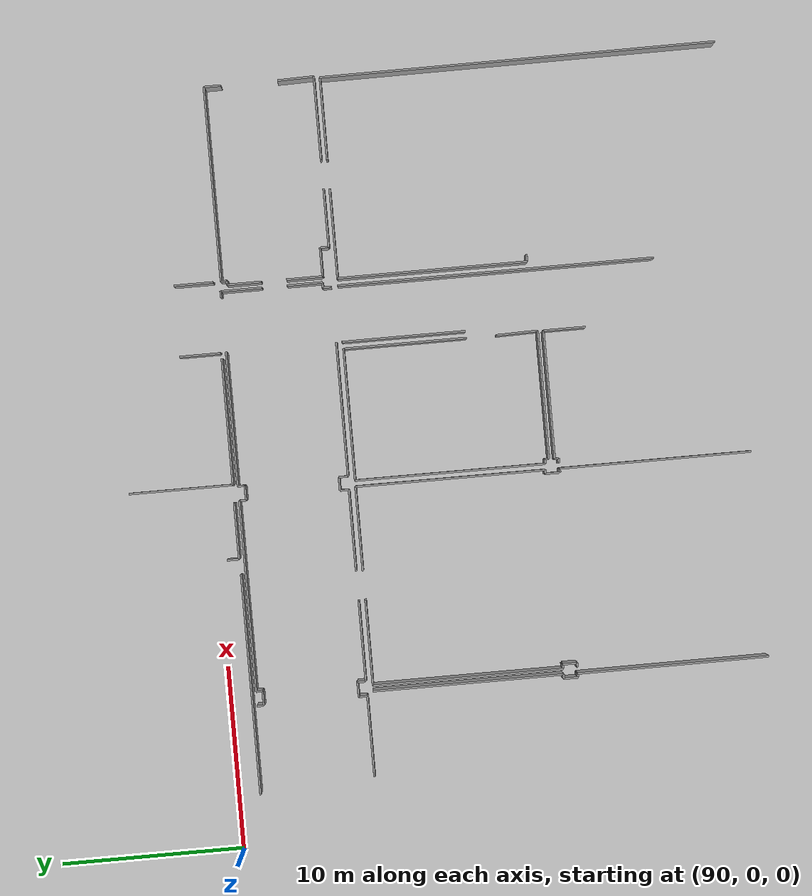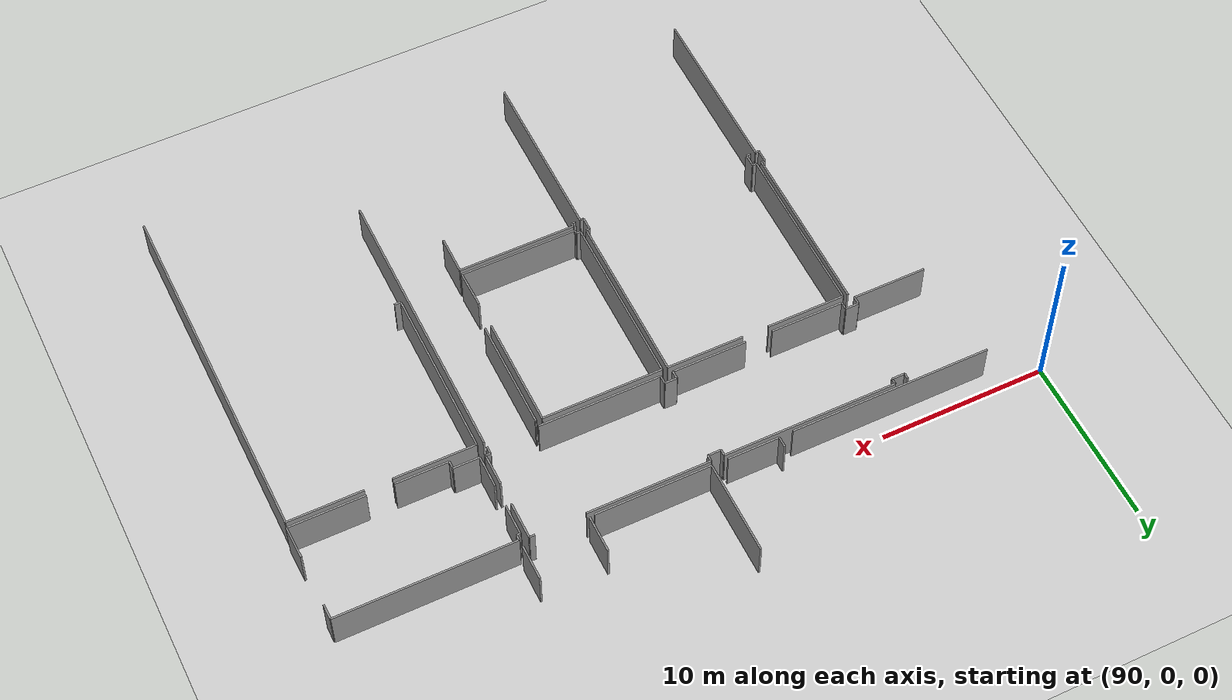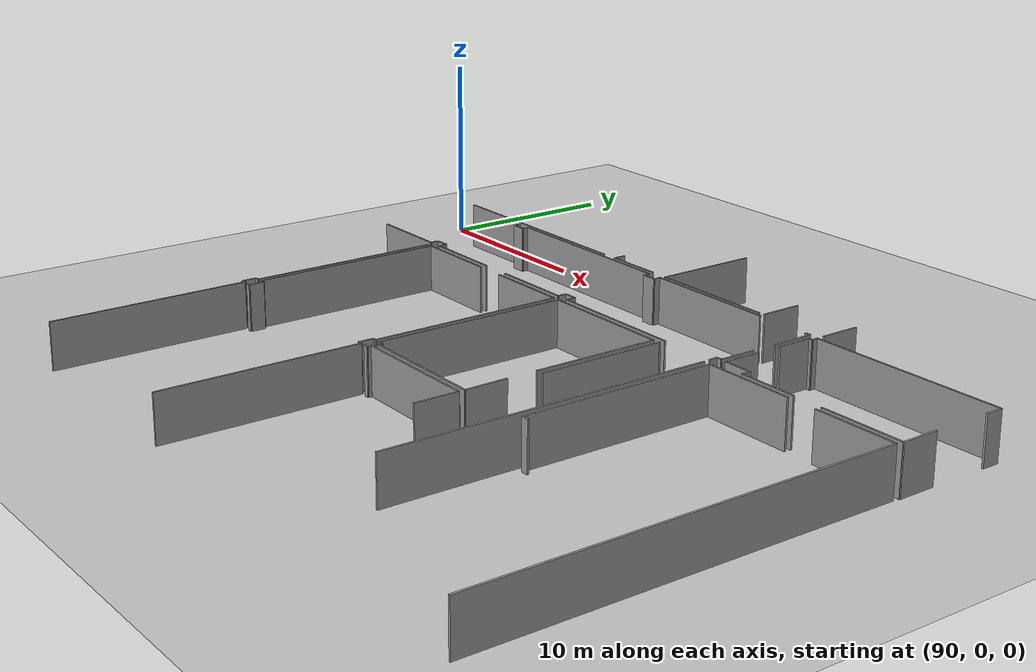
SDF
<sdf version="1.6">
 <world name="default">
  <model name="ground_plane">
   <static>1</static>
   <link name="link">
    <collision name="collision">
     <geometry><plane><normal>0 0 1</normal><size>100 100</size></plane></geometry>
     <surface><friction><ode><mu>100</mu><mu2>50</mu2></ode></friction></surface>
    </collision>
    <visual name="visual">
     <cast_shadows>0</cast_shadows>
     <geometry><plane><normal>0 0 1</normal><size>100 100</size></plane></geometry>
     <material>
      <script><uri>file://media/materials/scripts/gazebo.material</uri><name>Gazebo/Grey</name></script>
     </material>
    </visual>
   </link>
  </model>
  <model name="50015848">
   <static>1</static>
   <link name="Wall_566">
    <collision name="Wall_566_Collision">
     <geometry><box><size>0.3668910047 0.1 2.5</size></box></geometry>
     <pose>0.18344550235 0 1.25 0 0 0</pose>
    </collision>
    <visual name="Wall_566_Visual">
     <pose>0.18344550235 0 1.25 0 0 0</pose>
     <geometry><box><size>0.3668910047 0.1 2.5</size></box></geometry>
     <material>
      <script><uri>file://media/materials/scripts/gazebo.material</uri><name>Gazebo/Grey</name></script>
      <ambient>1 1 1 1</ambient>
     </material>
    </visual>
    <pose>229.67275403 -45.2369504405 0 0 0 -1.57079632679</pose>
   </link>
   <link name="Wall_567">
    <collision name="Wall_567_Collision">
     <geometry><box><size>0.784020196766 0.1 2.5</size></box></geometry>
     <pose>0.392010098383 0 1.25 0 0 0</pose>
    </collision>
    <visual name="Wall_567_Visual">
     <pose>0.392010098383 0 1.25 0 0 0</pose>
     <geometry><box><size>0.784020196766 0.1 2.5</size></box></geometry>
     <material>
      <script><uri>file://media/materials/scripts/gazebo.material</uri><name>Gazebo/Grey</name></script>
      <ambient>1 1 1 1</ambient>
     </material>
    </visual>
    <pose>229.67275403 -45.6038414452 0 0 0 0.0</pose>
   </link>
   <link name="Wall_568">
    <collision name="Wall_568_Collision">
     <geometry><box><size>0.348368844712 0.1 2.5</size></box></geometry>
     <pose>0.174184422356 0 1.25 0 0 0</pose>
    </collision>
    <visual name="Wall_568_Visual">
     <pose>0.174184422356 0 1.25 0 0 0</pose>
     <geometry><box><size>0.348368844712 0.1 2.5</size></box></geometry>
     <material>
      <script><uri>file://media/materials/scripts/gazebo.material</uri><name>Gazebo/Grey</name></script>
      <ambient>1 1 1 1</ambient>
     </material>
    </visual>
    <pose>230.456774226 -45.6038414452 0 0 0 1.57079632679</pose>
   </link>
   <link name="Wall_569">
    <collision name="Wall_569_Collision">
     <geometry><box><size>10.4104688263 0.1 2.5</size></box></geometry>
     <pose>5.20523441316 0 1.25 0 0 0</pose>
    </collision>
    <visual name="Wall_569_Visual">
     <pose>5.20523441316 0 1.25 0 0 0</pose>
     <geometry><box><size>10.4104688263 0.1 2.5</size></box></geometry>
     <material>
      <script><uri>file://media/materials/scripts/gazebo.material</uri><name>Gazebo/Grey</name></script>
      <ambient>1 1 1 1</ambient>
     </material>
    </visual>
    <pose>230.456774226 -45.2554726005 0 0 0 0.0</pose>
   </link>
   <link name="Wall_570">
    <collision name="Wall_570_Collision">
     <geometry><box><size>0.367905917576 0.1 2.5</size></box></geometry>
     <pose>0.183952958788 0 1.25 0 0 0</pose>
    </collision>
    <visual name="Wall_570_Visual">
     <pose>0.183952958788 0 1.25 0 0 0</pose>
     <geometry><box><size>0.367905917576 0.1 2.5</size></box></geometry>
     <material>
      <script><uri>file://media/materials/scripts/gazebo.material</uri><name>Gazebo/Grey</name></script>
      <ambient>1 1 1 1</ambient>
     </material>
    </visual>
    <pose>240.867243053 -45.2554726005 0 0 0 -1.57079632679</pose>
   </link>
   <link name="Wall_571">
    <collision name="Wall_571_Collision">
     <geometry><box><size>0.794169325527 0.1 2.5</size></box></geometry>
     <pose>0.397084662763 0 1.25 0 0 0</pose>
    </collision>
    <visual name="Wall_571_Visual">
     <pose>0.397084662763 0 1.25 0 0 0</pose>
     <geometry><box><size>0.794169325527 0.1 2.5</size></box></geometry>
     <material>
      <script><uri>file://media/materials/scripts/gazebo.material</uri><name>Gazebo/Grey</name></script>
      <ambient>1 1 1 1</ambient>
     </material>
    </visual>
    <pose>240.867243053 -45.6233785181 0 0 0 0.0</pose>
   </link>
   <link name="Wall_572">
    <collision name="Wall_572_Collision">
     <geometry><box><size>0.378562502775 0.1 2.5</size></box></geometry>
     <pose>0.189281251388 0 1.25 0 0 0</pose>
    </collision>
    <visual name="Wall_572_Visual">
     <pose>0.189281251388 0 1.25 0 0 0</pose>
     <geometry><box><size>0.378562502775 0.1 2.5</size></box></geometry>
     <material>
      <script><uri>file://media/materials/scripts/gazebo.material</uri><name>Gazebo/Grey</name></script>
      <ambient>1 1 1 1</ambient>
     </material>
    </visual>
    <pose>241.661412378 -45.6233785181 0 0 0 1.57079632679</pose>
   </link>
   <link name="Wall_573">
    <collision name="Wall_573_Collision">
     <geometry><box><size>7.3403573762 0.1 2.5</size></box></geometry>
     <pose>3.6701786881 0 1.25 0 0 0</pose>
    </collision>
    <visual name="Wall_573_Visual">
     <pose>3.6701786881 0 1.25 0 0 0</pose>
     <geometry><box><size>7.3403573762 0.1 2.5</size></box></geometry>
     <material>
      <script><uri>file://media/materials/scripts/gazebo.material</uri><name>Gazebo/Grey</name></script>
      <ambient>1 1 1 1</ambient>
     </material>
    </visual>
    <pose>241.661412378 -45.2448160153 0 0 0 0.0</pose>
   </link>
   <link name="Wall_574">
    <collision name="Wall_574_Collision">
     <geometry><box><size>0.319697555963 0.1 2.5</size></box></geometry>
     <pose>0.159848777981 0 1.25 0 0 0</pose>
    </collision>
    <visual name="Wall_574_Visual">
     <pose>0.159848777981 0 1.25 0 0 0</pose>
     <geometry><box><size>0.319697555963 0.1 2.5</size></box></geometry>
     <material>
      <script><uri>file://media/materials/scripts/gazebo.material</uri><name>Gazebo/Grey</name></script>
      <ambient>1 1 1 1</ambient>
     </material>
    </visual>
    <pose>251.98561361 -45.2448160153 0 0 0 0.0</pose>
   </link>
   <link name="Wall_575">
    <collision name="Wall_575_Collision">
     <geometry><box><size>2.25919606214 0.1 2.5</size></box></geometry>
     <pose>1.12959803107 0 1.25 0 0 0</pose>
    </collision>
    <visual name="Wall_575_Visual">
     <pose>1.12959803107 0 1.25 0 0 0</pose>
     <geometry><box><size>2.25919606214 0.1 2.5</size></box></geometry>
     <material>
      <script><uri>file://media/materials/scripts/gazebo.material</uri><name>Gazebo/Grey</name></script>
      <ambient>1 1 1 1</ambient>
     </material>
    </visual>
    <pose>252.305311166 -45.2448160153 0 0 0 -1.57079632679</pose>
   </link>
   <link name="Wall_576">
    <collision name="Wall_576_Collision">
     <geometry><box><size>1.93772240864 0.1 2.5</size></box></geometry>
     <pose>0.968861204321 0 1.25 0 0 0</pose>
    </collision>
    <visual name="Wall_576_Visual">
     <pose>0.968861204321 0 1.25 0 0 0</pose>
     <geometry><box><size>1.93772240864 0.1 2.5</size></box></geometry>
     <material>
      <script><uri>file://media/materials/scripts/gazebo.material</uri><name>Gazebo/Grey</name></script>
      <ambient>1 1 1 1</ambient>
     </material>
    </visual>
    <pose>252.305311166 -48.8629804185 0 0 0 -1.57079632679</pose>
   </link>
   <link name="Wall_577">
    <collision name="Wall_577_Collision">
     <geometry><box><size>0.286712887491 0.1 2.5</size></box></geometry>
     <pose>0.143356443745 0 1.25 0 0 0</pose>
    </collision>
    <visual name="Wall_577_Visual">
     <pose>0.143356443745 0 1.25 0 0 0</pose>
     <geometry><box><size>0.286712887491 0.1 2.5</size></box></geometry>
     <material>
      <script><uri>file://media/materials/scripts/gazebo.material</uri><name>Gazebo/Grey</name></script>
      <ambient>1 1 1 1</ambient>
     </material>
    </visual>
    <pose>252.305311166 -50.8007028272 0 0 0 3.14159265359</pose>
   </link>
   <link name="Wall_578">
    <collision name="Wall_578_Collision">
     <geometry><box><size>0.460516717518 0.1 2.5</size></box></geometry>
     <pose>0.230258358759 0 1.25 0 0 0</pose>
    </collision>
    <visual name="Wall_578_Visual">
     <pose>0.230258358759 0 1.25 0 0 0</pose>
     <geometry><box><size>0.460516717518 0.1 2.5</size></box></geometry>
     <material>
      <script><uri>file://media/materials/scripts/gazebo.material</uri><name>Gazebo/Grey</name></script>
      <ambient>1 1 1 1</ambient>
     </material>
    </visual>
    <pose>252.018598278 -50.8007028272 0 0 0 -1.57079632679</pose>
   </link>
   <link name="Wall_579">
    <collision name="Wall_579_Collision">
     <geometry><box><size>7.32767096525 0.1 2.5</size></box></geometry>
     <pose>3.66383548262 0 1.25 0 0 0</pose>
    </collision>
    <visual name="Wall_579_Visual">
     <pose>3.66383548262 0 1.25 0 0 0</pose>
     <geometry><box><size>7.32767096525 0.1 2.5</size></box></geometry>
     <material>
      <script><uri>file://media/materials/scripts/gazebo.material</uri><name>Gazebo/Grey</name></script>
      <ambient>1 1 1 1</ambient>
     </material>
    </visual>
    <pose>249.004307037 -51.2612195447 0 0 0 3.14159265359</pose>
   </link>
   <link name="Wall_580">
    <collision name="Wall_580_Collision">
     <geometry><box><size>0.49882967859 0.1 2.5</size></box></geometry>
     <pose>0.249414839295 0 1.25 0 0 0</pose>
    </collision>
    <visual name="Wall_580_Visual">
     <pose>0.249414839295 0 1.25 0 0 0</pose>
     <geometry><box><size>0.49882967859 0.1 2.5</size></box></geometry>
     <material>
      <script><uri>file://media/materials/scripts/gazebo.material</uri><name>Gazebo/Grey</name></script>
      <ambient>1 1 1 1</ambient>
     </material>
    </visual>
    <pose>241.676636071 -51.2612195447 0 0 0 1.57079632679</pose>
   </link>
   <link name="Wall_581">
    <collision name="Wall_581_Collision">
     <geometry><box><size>0.728199988582 0.1 2.5</size></box></geometry>
     <pose>0.364099994291 0 1.25 0 0 0</pose>
    </collision>
    <visual name="Wall_581_Visual">
     <pose>0.364099994291 0 1.25 0 0 0</pose>
     <geometry><box><size>0.728199988582 0.1 2.5</size></box></geometry>
     <material>
      <script><uri>file://media/materials/scripts/gazebo.material</uri><name>Gazebo/Grey</name></script>
      <ambient>1 1 1 1</ambient>
     </material>
    </visual>
    <pose>241.676636071 -50.7623898661 0 0 0 3.14159265359</pose>
   </link>
   <link name="Wall_582">
    <collision name="Wall_582_Collision">
     <geometry><box><size>0.479800062163 0.1 2.5</size></box></geometry>
     <pose>0.239900031082 0 1.25 0 0 0</pose>
    </collision>
    <visual name="Wall_582_Visual">
     <pose>0.239900031082 0 1.25 0 0 0</pose>
     <geometry><box><size>0.479800062163 0.1 2.5</size></box></geometry>
     <material>
      <script><uri>file://media/materials/scripts/gazebo.material</uri><name>Gazebo/Grey</name></script>
      <ambient>1 1 1 1</ambient>
     </material>
    </visual>
    <pose>240.948436083 -50.7623898661 0 0 0 -1.57079632679</pose>
   </link>
   <link name="Wall_583">
    <collision name="Wall_583_Collision">
     <geometry><box><size>4.45800480815 0.1 2.5</size></box></geometry>
     <pose>2.22900240407 0 1.25 0 0 0</pose>
    </collision>
    <visual name="Wall_583_Visual">
     <pose>2.22900240407 0 1.25 0 0 0</pose>
     <geometry><box><size>4.45800480815 0.1 2.5</size></box></geometry>
     <material>
      <script><uri>file://media/materials/scripts/gazebo.material</uri><name>Gazebo/Grey</name></script>
      <ambient>1 1 1 1</ambient>
     </material>
    </visual>
    <pose>240.948436083 -51.2421899283 0 0 0 3.14159265359</pose>
   </link>
   <link name="Wall_584">
    <collision name="Wall_584_Collision">
     <geometry><box><size>4.36919993149 0.1 2.5</size></box></geometry>
     <pose>2.18459996575 0 1.25 0 0 0</pose>
    </collision>
    <visual name="Wall_584_Visual">
     <pose>2.18459996575 0 1.25 0 0 0</pose>
     <geometry><box><size>4.36919993149 0.1 2.5</size></box></geometry>
     <material>
      <script><uri>file://media/materials/scripts/gazebo.material</uri><name>Gazebo/Grey</name></script>
      <ambient>1 1 1 1</ambient>
     </material>
    </visual>
    <pose>234.856421544 -51.2421899283 0 0 0 3.14159265359</pose>
   </link>
   <link name="Wall_585">
    <collision name="Wall_585_Collision">
     <geometry><box><size>0.45214368629 0.1 2.5</size></box></geometry>
     <pose>0.226071843145 0 1.25 0 0 0</pose>
    </collision>
    <visual name="Wall_585_Visual">
     <pose>0.226071843145 0 1.25 0 0 0</pose>
     <geometry><box><size>0.45214368629 0.1 2.5</size></box></geometry>
     <material>
      <script><uri>file://media/materials/scripts/gazebo.material</uri><name>Gazebo/Grey</name></script>
      <ambient>1 1 1 1</ambient>
     </material>
    </visual>
    <pose>230.487221613 -51.2421899283 0 0 0 1.57079632679</pose>
   </link>
   <link name="Wall_586">
    <collision name="Wall_586_Collision">
     <geometry><box><size>0.801781172097 0.1 2.5</size></box></geometry>
     <pose>0.400890586049 0 1.25 0 0 0</pose>
    </collision>
    <visual name="Wall_586_Visual">
     <pose>0.400890586049 0 1.25 0 0 0</pose>
     <geometry><box><size>0.801781172097 0.1 2.5</size></box></geometry>
     <material>
      <script><uri>file://media/materials/scripts/gazebo.material</uri><name>Gazebo/Grey</name></script>
      <ambient>1 1 1 1</ambient>
     </material>
    </visual>
    <pose>230.487221613 -50.790046242 0 0 0 3.14159265359</pose>
   </link>
   <link name="Wall_587">
    <collision name="Wall_587_Collision">
     <geometry><box><size>0.467113651213 0.1 2.5</size></box></geometry>
     <pose>0.233556825606 0 1.25 0 0 0</pose>
    </collision>
    <visual name="Wall_587_Visual">
     <pose>0.233556825606 0 1.25 0 0 0</pose>
     <geometry><box><size>0.467113651213 0.1 2.5</size></box></geometry>
     <material>
      <script><uri>file://media/materials/scripts/gazebo.material</uri><name>Gazebo/Grey</name></script>
      <ambient>1 1 1 1</ambient>
     </material>
    </visual>
    <pose>229.68544044 -50.790046242 0 0 0 -1.57079632679</pose>
   </link>
   <link name="Wall_588">
    <collision name="Wall_588_Collision">
     <geometry><box><size>4.40472188216 0.1 2.5</size></box></geometry>
     <pose>2.20236094108 0 1.25 0 0 0</pose>
    </collision>
    <visual name="Wall_588_Visual">
     <pose>2.20236094108 0 1.25 0 0 0</pose>
     <geometry><box><size>4.40472188216 0.1 2.5</size></box></geometry>
     <material>
      <script><uri>file://media/materials/scripts/gazebo.material</uri><name>Gazebo/Grey</name></script>
      <ambient>1 1 1 1</ambient>
     </material>
    </visual>
    <pose>229.68544044 -51.2571598932 0 0 0 3.14159265359</pose>
   </link>
   <link name="Wall_953">
    <collision name="Wall_953_Collision">
     <geometry><box><size>3.08533514326 0.1 2.5</size></box></geometry>
     <pose>1.54266757163 0 1.25 0 0 0</pose>
    </collision>
    <visual name="Wall_953_Visual">
     <pose>1.54266757163 0 1.25 0 0 0</pose>
     <geometry><box><size>3.08533514326 0.1 2.5</size></box></geometry>
     <material>
      <script><uri>file://media/materials/scripts/gazebo.material</uri><name>Gazebo/Grey</name></script>
      <ambient>1 1 1 1</ambient>
     </material>
    </visual>
    <pose>240.796199151 -44.9674910719 0 0 0 3.14159265359</pose>
   </link>
   <link name="Wall_954">
    <collision name="Wall_954_Collision">
     <geometry><box><size>0.650559153563 0.1 2.5</size></box></geometry>
     <pose>0.325279576781 0 1.25 0 0 0</pose>
    </collision>
    <visual name="Wall_954_Visual">
     <pose>0.325279576781 0 1.25 0 0 0</pose>
     <geometry><box><size>0.650559153563 0.1 2.5</size></box></geometry>
     <material>
      <script><uri>file://media/materials/scripts/gazebo.material</uri><name>Gazebo/Grey</name></script>
      <ambient>1 1 1 1</ambient>
     </material>
    </visual>
    <pose>237.710864008 -44.9674910719 0 0 0 1.57079632679</pose>
   </link>
   <link name="Wall_957">
    <collision name="Wall_957_Collision">
     <geometry><box><size>12.0267175815 0.1 2.5</size></box></geometry>
     <pose>6.01335879073 0 1.25 0 0 0</pose>
    </collision>
    <visual name="Wall_957_Visual">
     <pose>6.01335879073 0 1.25 0 0 0</pose>
     <geometry><box><size>12.0267175815 0.1 2.5</size></box></geometry>
     <material>
      <script><uri>file://media/materials/scripts/gazebo.material</uri><name>Gazebo/Grey</name></script>
      <ambient>1 1 1 1</ambient>
     </material>
    </visual>
    <pose>236.876098167 -45.0009831968 0 0 0 3.14159265359</pose>
   </link>
   <link name="Wall_1065">
    <collision name="Wall_1065_Collision">
     <geometry><box><size>4.52397414509 0.1 2.5</size></box></geometry>
     <pose>2.26198707255 0 1.25 0 0 0</pose>
    </collision>
    <visual name="Wall_1065_Visual">
     <pose>2.26198707255 0 1.25 0 0 0</pose>
     <geometry><box><size>4.52397414509 0.1 2.5</size></box></geometry>
     <material>
      <script><uri>file://media/materials/scripts/gazebo.material</uri><name>Gazebo/Grey</name></script>
      <ambient>1 1 1 1</ambient>
     </material>
    </visual>
    <pose>263.487113778 -51.3122189167 0 0 0 3.14159265359</pose>
   </link>
   <link name="Wall_1066">
    <collision name="Wall_1066_Collision">
     <geometry><box><size>3.17667730211 0.1 2.5</size></box></geometry>
     <pose>1.58833865105 0 1.25 0 0 0</pose>
    </collision>
    <visual name="Wall_1066_Visual">
     <pose>1.58833865105 0 1.25 0 0 0</pose>
     <geometry><box><size>3.17667730211 0.1 2.5</size></box></geometry>
     <material>
      <script><uri>file://media/materials/scripts/gazebo.material</uri><name>Gazebo/Grey</name></script>
      <ambient>1 1 1 1</ambient>
     </material>
    </visual>
    <pose>257.369726418 -51.3122189167 0 0 0 3.14159265359</pose>
   </link>
   <link name="Wall_1067">
    <collision name="Wall_1067_Collision">
     <geometry><box><size>0.472188215593 0.1 2.5</size></box></geometry>
     <pose>0.236094107796 0 1.25 0 0 0</pose>
    </collision>
    <visual name="Wall_1067_Visual">
     <pose>0.236094107796 0 1.25 0 0 0</pose>
     <geometry><box><size>0.472188215593 0.1 2.5</size></box></geometry>
     <material>
      <script><uri>file://media/materials/scripts/gazebo.material</uri><name>Gazebo/Grey</name></script>
      <ambient>1 1 1 1</ambient>
     </material>
    </visual>
    <pose>254.193049115 -51.3122189167 0 0 0 1.57079632679</pose>
   </link>
   <link name="Wall_1068">
    <collision name="Wall_1068_Collision">
     <geometry><box><size>1.56804039353 0.1 2.5</size></box></geometry>
     <pose>0.784020196766 0 1.25 0 0 0</pose>
    </collision>
    <visual name="Wall_1068_Visual">
     <pose>0.784020196766 0 1.25 0 0 0</pose>
     <geometry><box><size>1.56804039353 0.1 2.5</size></box></geometry>
     <material>
      <script><uri>file://media/materials/scripts/gazebo.material</uri><name>Gazebo/Grey</name></script>
      <ambient>1 1 1 1</ambient>
     </material>
    </visual>
    <pose>254.193049115 -50.8400307011 0 0 0 3.14159265359</pose>
   </link>
   <link name="Wall_1069">
    <collision name="Wall_1069_Collision">
     <geometry><box><size>1.96867725136 0.1 2.5</size></box></geometry>
     <pose>0.984338625681 0 1.25 0 0 0</pose>
    </collision>
    <visual name="Wall_1069_Visual">
     <pose>0.984338625681 0 1.25 0 0 0</pose>
     <geometry><box><size>1.96867725136 0.1 2.5</size></box></geometry>
     <material>
      <script><uri>file://media/materials/scripts/gazebo.material</uri><name>Gazebo/Grey</name></script>
      <ambient>1 1 1 1</ambient>
     </material>
    </visual>
    <pose>252.625008722 -50.8400307011 0 0 0 1.57079632679</pose>
   </link>
   <link name="Wall_1070">
    <collision name="Wall_1070_Collision">
     <geometry><box><size>1.87124561526 0.1 2.5</size></box></geometry>
     <pose>0.93562280763 0 1.25 0 0 0</pose>
    </collision>
    <visual name="Wall_1070_Visual">
     <pose>0.93562280763 0 1.25 0 0 0</pose>
     <geometry><box><size>1.87124561526 0.1 2.5</size></box></geometry>
     <material>
      <script><uri>file://media/materials/scripts/gazebo.material</uri><name>Gazebo/Grey</name></script>
      <ambient>1 1 1 1</ambient>
     </material>
    </visual>
    <pose>252.625008722 -47.5040120775 0 0 0 1.57079632679</pose>
   </link>
   <link name="Wall_1071">
    <collision name="Wall_1071_Collision">
     <geometry><box><size>0.215668986165 0.1 2.5</size></box></geometry>
     <pose>0.107834493083 0 1.25 0 0 0</pose>
    </collision>
    <visual name="Wall_1071_Visual">
     <pose>0.107834493083 0 1.25 0 0 0</pose>
     <geometry><box><size>0.215668986165 0.1 2.5</size></box></geometry>
     <material>
      <script><uri>file://media/materials/scripts/gazebo.material</uri><name>Gazebo/Grey</name></script>
      <ambient>1 1 1 1</ambient>
     </material>
    </visual>
    <pose>252.625008722 -45.6327664622 0 0 0 0.0</pose>
   </link>
   <link name="Wall_1072">
    <collision name="Wall_1072_Collision">
     <geometry><box><size>0.319190099525 0.1 2.5</size></box></geometry>
     <pose>0.159595049762 0 1.25 0 0 0</pose>
    </collision>
    <visual name="Wall_1072_Visual">
     <pose>0.159595049762 0 1.25 0 0 0</pose>
     <geometry><box><size>0.319190099525 0.1 2.5</size></box></geometry>
     <material>
      <script><uri>file://media/materials/scripts/gazebo.material</uri><name>Gazebo/Grey</name></script>
      <ambient>1 1 1 1</ambient>
     </material>
    </visual>
    <pose>252.840677708 -45.6327664622 0 0 0 1.57079632679</pose>
   </link>
   <link name="Wall_1073">
    <collision name="Wall_1073_Collision">
     <geometry><box><size>10.605839555 0.1 2.5</size></box></geometry>
     <pose>5.30291977748 0 1.25 0 0 0</pose>
    </collision>
    <visual name="Wall_1073_Visual">
     <pose>5.30291977748 0 1.25 0 0 0</pose>
     <geometry><box><size>10.605839555 0.1 2.5</size></box></geometry>
     <material>
      <script><uri>file://media/materials/scripts/gazebo.material</uri><name>Gazebo/Grey</name></script>
      <ambient>1 1 1 1</ambient>
     </material>
    </visual>
    <pose>252.840677708 -45.3135763627 0 0 0 0.0</pose>
   </link>
   <link name="Wall_1074">
    <collision name="Wall_1074_Collision">
     <geometry><box><size>0.92001852216 0.1 2.5</size></box></geometry>
     <pose>0.46000926108 0 1.25 0 0 0</pose>
    </collision>
    <visual name="Wall_1074_Visual">
     <pose>0.46000926108 0 1.25 0 0 0</pose>
     <geometry><box><size>0.92001852216 0.1 2.5</size></box></geometry>
     <material>
      <script><uri>file://media/materials/scripts/gazebo.material</uri><name>Gazebo/Grey</name></script>
      <ambient>1 1 1 1</ambient>
     </material>
    </visual>
    <pose>263.446517263 -45.3135763627 0 0 0 -1.57079632679</pose>
   </link>
   <link name="Wall_1075">
    <collision name="Wall_1075_Collision">
     <geometry><box><size>1.9855846395 0.1 2.5</size></box></geometry>
     <pose>0.99279231975 0 1.25 0 0 0</pose>
    </collision>
    <visual name="Wall_1075_Visual">
     <pose>0.99279231975 0 1.25 0 0 0</pose>
     <geometry><box><size>1.9855846395 0.1 2.5</size></box></geometry>
     <material>
      <script><uri>file://media/materials/scripts/gazebo.material</uri><name>Gazebo/Grey</name></script>
      <ambient>1 1 1 1</ambient>
     </material>
    </visual>
    <pose>263.446517263 -49.3270493311 0 0 0 -1.55034927903</pose>
   </link>
   <link name="Wall_1076">
    <collision name="Wall_1076_Collision">
     <geometry><box><size>2.24346491256 0.1 2.5</size></box></geometry>
     <pose>1.12173245628 0 1.25 0 0 0</pose>
    </collision>
    <visual name="Wall_1076_Visual">
     <pose>1.12173245628 0 1.25 0 0 0</pose>
     <geometry><box><size>2.24346491256 0.1 2.5</size></box></geometry>
     <material>
      <script><uri>file://media/materials/scripts/gazebo.material</uri><name>Gazebo/Grey</name></script>
      <ambient>1 1 1 1</ambient>
     </material>
    </visual>
    <pose>248.948486828 -44.94211825 0 0 0 1.57079632679</pose>
   </link>
   <link name="Wall_1124">
    <collision name="Wall_1124_Collision">
     <geometry><box><size>6.89633299291 0.1 2.5</size></box></geometry>
     <pose>3.44816649646 0 1.25 0 0 0</pose>
    </collision>
    <visual name="Wall_1124_Visual">
     <pose>3.44816649646 0 1.25 0 0 0</pose>
     <geometry><box><size>6.89633299291 0.1 2.5</size></box></geometry>
     <material>
      <script><uri>file://media/materials/scripts/gazebo.material</uri><name>Gazebo/Grey</name></script>
      <ambient>1 1 1 1</ambient>
     </material>
    </visual>
    <pose>248.659236659 -44.9875356012 0 0 0 3.14159265359</pose>
   </link>
   <link name="Wall_1125">
    <collision name="Wall_1125_Collision">
     <geometry><box><size>5.67158687971 0.1 2.5</size></box></geometry>
     <pose>2.83579343986 0 1.25 0 0 0</pose>
    </collision>
    <visual name="Wall_1125_Visual">
     <pose>2.83579343986 0 1.25 0 0 0</pose>
     <geometry><box><size>5.67158687971 0.1 2.5</size></box></geometry>
     <material>
      <script><uri>file://media/materials/scripts/gazebo.material</uri><name>Gazebo/Grey</name></script>
      <ambient>1 1 1 1</ambient>
     </material>
    </visual>
    <pose>241.762903666 -44.9875356012 0 0 0 1.57079632679</pose>
   </link>
   <link name="Wall_1201">
    <collision name="Wall_1201_Collision">
     <geometry><box><size>2.14577954824 0.1 2.5</size></box></geometry>
     <pose>1.07288977412 0 1.25 0 0 0</pose>
    </collision>
    <visual name="Wall_1201_Visual">
     <pose>1.07288977412 0 1.25 0 0 0</pose>
     <geometry><box><size>2.14577954824 0.1 2.5</size></box></geometry>
     <material>
      <script><uri>file://media/materials/scripts/gazebo.material</uri><name>Gazebo/Grey</name></script>
      <ambient>1 1 1 1</ambient>
     </material>
    </visual>
    <pose>252.825454015 -44.8916263345 0 0 0 1.57079632679</pose>
   </link>
   <link name="Wall_1216">
    <collision name="Wall_1216_Collision">
     <geometry><box><size>0.390741457288 0.1 2.5</size></box></geometry>
     <pose>0.195370728644 0 1.25 0 0 0</pose>
    </collision>
    <visual name="Wall_1216_Visual">
     <pose>0.195370728644 0 1.25 0 0 0</pose>
     <geometry><box><size>0.390741457288 0.1 2.5</size></box></geometry>
     <material>
      <script><uri>file://media/materials/scripts/gazebo.material</uri><name>Gazebo/Grey</name></script>
      <ambient>1 1 1 1</ambient>
     </material>
    </visual>
    <pose>252.840677708 -61.9819979829 0 0 0 3.14159265359</pose>
   </link>
   <link name="Wall_1217">
    <collision name="Wall_1217_Collision">
     <geometry><box><size>10.3409472943 0.1 2.5</size></box></geometry>
     <pose>5.17047364715 0 1.25 0 0 0</pose>
    </collision>
    <visual name="Wall_1217_Visual">
     <pose>5.17047364715 0 1.25 0 0 0</pose>
     <geometry><box><size>10.3409472943 0.1 2.5</size></box></geometry>
     <material>
      <script><uri>file://media/materials/scripts/gazebo.material</uri><name>Gazebo/Grey</name></script>
      <ambient>1 1 1 1</ambient>
     </material>
    </visual>
    <pose>252.449936251 -61.9819979829 0 0 0 1.57079632679</pose>
   </link>
   <link name="Wall_1218">
    <collision name="Wall_1218_Collision">
     <geometry><box><size>4.88680549829 0.1 2.5</size></box></geometry>
     <pose>2.44340274915 0 1.25 0 0 0</pose>
    </collision>
    <visual name="Wall_1218_Visual">
     <pose>2.44340274915 0 1.25 0 0 0</pose>
     <geometry><box><size>4.88680549829 0.1 2.5</size></box></geometry>
     <material>
      <script><uri>file://media/materials/scripts/gazebo.material</uri><name>Gazebo/Grey</name></script>
      <ambient>1 1 1 1</ambient>
     </material>
    </visual>
    <pose>252.449936251 -51.6410506886 0 0 0 0.0</pose>
   </link>
   <link name="Wall_1219">
    <collision name="Wall_1219_Collision">
     <geometry><box><size>4.46561665472 0.1 2.5</size></box></geometry>
     <pose>2.23280832736 0 1.25 0 0 0</pose>
    </collision>
    <visual name="Wall_1219_Visual">
     <pose>2.23280832736 0 1.25 0 0 0</pose>
     <geometry><box><size>4.46561665472 0.1 2.5</size></box></geometry>
     <material>
      <script><uri>file://media/materials/scripts/gazebo.material</uri><name>Gazebo/Grey</name></script>
      <ambient>1 1 1 1</ambient>
     </material>
    </visual>
    <pose>258.942841375 -51.6410506886 0 0 0 0.0</pose>
   </link>
   <link name="Wall_1220">
    <collision name="Wall_1220_Collision">
     <geometry><box><size>21.5578366691 0.1 2.5</size></box></geometry>
     <pose>10.7789183345 0 1.25 0 0 0</pose>
    </collision>
    <visual name="Wall_1220_Visual">
     <pose>10.7789183345 0 1.25 0 0 0</pose>
     <geometry><box><size>21.5578366691 0.1 2.5</size></box></geometry>
     <material>
      <script><uri>file://media/materials/scripts/gazebo.material</uri><name>Gazebo/Grey</name></script>
      <ambient>1 1 1 1</ambient>
     </material>
    </visual>
    <pose>263.40845803 -51.6410506886 0 0 0 -1.56820700063</pose>
   </link>
   <link name="Wall_1225">
    <collision name="Wall_1225_Collision">
     <geometry><box><size>6.72379780398 0.1 2.5</size></box></geometry>
     <pose>3.36189890199 0 1.25 0 0 0</pose>
    </collision>
    <visual name="Wall_1225_Visual">
     <pose>3.36189890199 0 1.25 0 0 0</pose>
     <geometry><box><size>6.72379780398 0.1 2.5</size></box></geometry>
     <material>
      <script><uri>file://media/materials/scripts/gazebo.material</uri><name>Gazebo/Grey</name></script>
      <ambient>1 1 1 1</ambient>
     </material>
    </visual>
    <pose>248.978934215 -58.3214609671 0 0 0 1.57079632679</pose>
   </link>
   <link name="Wall_1226">
    <collision name="Wall_1226_Collision">
     <geometry><box><size>0.0583574903741 0.1 2.5</size></box></geometry>
     <pose>0.0291787451871 0 1.25 0 0 0</pose>
    </collision>
    <visual name="Wall_1226_Visual">
     <pose>0.0291787451871 0 1.25 0 0 0</pose>
     <geometry><box><size>0.0583574903741 0.1 2.5</size></box></geometry>
     <material>
      <script><uri>file://media/materials/scripts/gazebo.material</uri><name>Gazebo/Grey</name></script>
      <ambient>1 1 1 1</ambient>
     </material>
    </visual>
    <pose>248.978934215 -51.5976631631 0 0 0 0.0</pose>
   </link>
   <link name="Wall_1227">
    <collision name="Wall_1227_Collision">
     <geometry><box><size>17.2768618894 0.1 2.5</size></box></geometry>
     <pose>8.63843094469 0 1.25 0 0 0</pose>
    </collision>
    <visual name="Wall_1227_Visual">
     <pose>8.63843094469 0 1.25 0 0 0</pose>
     <geometry><box><size>17.2768618894 0.1 2.5</size></box></geometry>
     <material>
      <script><uri>file://media/materials/scripts/gazebo.material</uri><name>Gazebo/Grey</name></script>
      <ambient>1 1 1 1</ambient>
     </material>
    </visual>
    <pose>252.056657511 -51.5976631631 0 0 0 -1.57079632679</pose>
   </link>
   <link name="Wall_1229">
    <collision name="Wall_1229_Collision">
     <geometry><box><size>6.977526023 0.1 2.5</size></box></geometry>
     <pose>3.4887630115 0 1.25 0 0 0</pose>
    </collision>
    <visual name="Wall_1229_Visual">
     <pose>3.4887630115 0 1.25 0 0 0</pose>
     <geometry><box><size>6.977526023 0.1 2.5</size></box></geometry>
     <material>
      <script><uri>file://media/materials/scripts/gazebo.material</uri><name>Gazebo/Grey</name></script>
      <ambient>1 1 1 1</ambient>
     </material>
    </visual>
    <pose>248.64908753 -62.2301441811 0 0 0 3.14159265359</pose>
   </link>
   <link name="Wall_1230">
    <collision name="Wall_1230_Collision">
     <geometry><box><size>0.218967453013 0.1 2.5</size></box></geometry>
     <pose>0.109483726506 0 1.25 0 0 0</pose>
    </collision>
    <visual name="Wall_1230_Visual">
     <pose>0.109483726506 0 1.25 0 0 0</pose>
     <geometry><box><size>0.218967453013 0.1 2.5</size></box></geometry>
     <material>
      <script><uri>file://media/materials/scripts/gazebo.material</uri><name>Gazebo/Grey</name></script>
      <ambient>1 1 1 1</ambient>
     </material>
    </visual>
    <pose>241.671561507 -62.2301441811 0 0 0 1.57079632679</pose>
   </link>
   <link name="Wall_1231">
    <collision name="Wall_1231_Collision">
     <geometry><box><size>0.258802783399 0.1 2.5</size></box></geometry>
     <pose>0.129401391699 0 1.25 0 0 0</pose>
    </collision>
    <visual name="Wall_1231_Visual">
     <pose>0.129401391699 0 1.25 0 0 0</pose>
     <geometry><box><size>0.258802783399 0.1 2.5</size></box></geometry>
     <material>
      <script><uri>file://media/materials/scripts/gazebo.material</uri><name>Gazebo/Grey</name></script>
      <ambient>1 1 1 1</ambient>
     </material>
    </visual>
    <pose>241.671561507 -62.011176728 0 0 0 3.14159265359</pose>
   </link>
   <link name="Wall_1232">
    <collision name="Wall_1232_Collision">
     <geometry><box><size>10.3871258302 0.1 2.5</size></box></geometry>
     <pose>5.19356291508 0 1.25 0 0 0</pose>
    </collision>
    <visual name="Wall_1232_Visual">
     <pose>5.19356291508 0 1.25 0 0 0</pose>
     <geometry><box><size>10.3871258302 0.1 2.5</size></box></geometry>
     <material>
      <script><uri>file://media/materials/scripts/gazebo.material</uri><name>Gazebo/Grey</name></script>
      <ambient>1 1 1 1</ambient>
     </material>
    </visual>
    <pose>241.412758723 -62.011176728 0 0 0 1.57079632679</pose>
   </link>
   <link name="Wall_1233">
    <collision name="Wall_1233_Collision">
     <geometry><box><size>7.19319500917 0.1 2.5</size></box></geometry>
     <pose>3.59659750458 0 1.25 0 0 0</pose>
    </collision>
    <visual name="Wall_1233_Visual">
     <pose>3.59659750458 0 1.25 0 0 0</pose>
     <geometry><box><size>7.19319500917 0.1 2.5</size></box></geometry>
     <material>
      <script><uri>file://media/materials/scripts/gazebo.material</uri><name>Gazebo/Grey</name></script>
      <ambient>1 1 1 1</ambient>
     </material>
    </visual>
    <pose>241.412758723 -51.6240508979 0 0 0 0.0</pose>
   </link>
   <link name="Wall_1234">
    <collision name="Wall_1234_Collision">
     <geometry><box><size>6.72329034754 0.1 2.5</size></box></geometry>
     <pose>3.36164517377 0 1.25 0 0 0</pose>
    </collision>
    <visual name="Wall_1234_Visual">
     <pose>3.36164517377 0 1.25 0 0 0</pose>
     <geometry><box><size>6.72329034754 0.1 2.5</size></box></geometry>
     <material>
      <script><uri>file://media/materials/scripts/gazebo.material</uri><name>Gazebo/Grey</name></script>
      <ambient>1 1 1 1</ambient>
     </material>
    </visual>
    <pose>248.605953733 -51.6240508979 0 0 0 -1.57079632679</pose>
   </link>
   <link name="Wall_1235">
    <collision name="Wall_1235_Collision">
     <geometry><box><size>2.26493511555 0.1 2.5</size></box></geometry>
     <pose>1.13246755778 0 1.25 0 0 0</pose>
    </collision>
    <visual name="Wall_1235_Visual">
     <pose>1.13246755778 0 1.25 0 0 0</pose>
     <geometry><box><size>2.26493511555 0.1 2.5</size></box></geometry>
     <material>
      <script><uri>file://media/materials/scripts/gazebo.material</uri><name>Gazebo/Grey</name></script>
      <ambient>1 1 1 1</ambient>
     </material>
    </visual>
    <pose>248.605953733 -59.9656198263 0 0 0 -1.55175101081</pose>
   </link>
   <link name="Wall_1240">
    <collision name="Wall_1240_Collision">
     <geometry><box><size>0.248653654638 0.1 2.5</size></box></geometry>
     <pose>0.124326827319 0 1.25 0 0 0</pose>
    </collision>
    <visual name="Wall_1240_Visual">
     <pose>0.124326827319 0 1.25 0 0 0</pose>
     <geometry><box><size>0.248653654638 0.1 2.5</size></box></geometry>
     <material>
      <script><uri>file://media/materials/scripts/gazebo.material</uri><name>Gazebo/Grey</name></script>
      <ambient>1 1 1 1</ambient>
     </material>
    </visual>
    <pose>241.379774055 -62.7556153226 0 0 0 0.0</pose>
   </link>
   <link name="Wall_1241">
    <collision name="Wall_1241_Collision">
     <geometry><box><size>0.215668986165 0.1 2.5</size></box></geometry>
     <pose>0.107834493083 0 1.25 0 0 0</pose>
    </collision>
    <visual name="Wall_1241_Visual">
     <pose>0.107834493083 0 1.25 0 0 0</pose>
     <geometry><box><size>0.215668986165 0.1 2.5</size></box></geometry>
     <material>
      <script><uri>file://media/materials/scripts/gazebo.material</uri><name>Gazebo/Grey</name></script>
      <ambient>1 1 1 1</ambient>
     </material>
    </visual>
    <pose>241.62842771 -62.7556153226 0 0 0 1.57079632679</pose>
   </link>
   <link name="Wall_1242">
    <collision name="Wall_1242_Collision">
     <geometry><box><size>7.00036156271 0.1 2.5</size></box></geometry>
     <pose>3.50018078136 0 1.25 0 0 0</pose>
    </collision>
    <visual name="Wall_1242_Visual">
     <pose>3.50018078136 0 1.25 0 0 0</pose>
     <geometry><box><size>7.00036156271 0.1 2.5</size></box></geometry>
     <material>
      <script><uri>file://media/materials/scripts/gazebo.material</uri><name>Gazebo/Grey</name></script>
      <ambient>1 1 1 1</ambient>
     </material>
    </visual>
    <pose>241.62842771 -62.5399463365 0 0 0 0.0</pose>
   </link>
   <link name="Wall_1243">
    <collision name="Wall_1243_Collision">
     <geometry><box><size>2.30588205444 0.1 2.5</size></box></geometry>
     <pose>1.15294102722 0 1.25 0 0 0</pose>
    </collision>
    <visual name="Wall_1243_Visual">
     <pose>1.15294102722 0 1.25 0 0 0</pose>
     <geometry><box><size>2.30588205444 0.1 2.5</size></box></geometry>
     <material>
      <script><uri>file://media/materials/scripts/gazebo.material</uri><name>Gazebo/Grey</name></script>
      <ambient>1 1 1 1</ambient>
     </material>
    </visual>
    <pose>248.628789272 -62.5399463365 0 0 0 -1.57079632679</pose>
   </link>
   <link name="Wall_1248">
    <collision name="Wall_1248_Collision">
     <geometry><box><size>0.248653654638 0.1 2.5</size></box></geometry>
     <pose>0.124326827319 0 1.25 0 0 0</pose>
    </collision>
    <visual name="Wall_1248_Visual">
     <pose>0.124326827319 0 1.25 0 0 0</pose>
     <geometry><box><size>0.248653654638 0.1 2.5</size></box></geometry>
     <material>
      <script><uri>file://media/materials/scripts/gazebo.material</uri><name>Gazebo/Grey</name></script>
      <ambient>1 1 1 1</ambient>
     </material>
    </visual>
    <pose>230.223344265 -62.7799732317 0 0 0 0.0</pose>
   </link>
   <link name="Wall_1249">
    <collision name="Wall_1249_Collision">
     <geometry><box><size>0.783259012109 0.1 2.5</size></box></geometry>
     <pose>0.391629506055 0 1.25 0 0 0</pose>
    </collision>
    <visual name="Wall_1249_Visual">
     <pose>0.391629506055 0 1.25 0 0 0</pose>
     <geometry><box><size>0.783259012109 0.1 2.5</size></box></geometry>
     <material>
      <script><uri>file://media/materials/scripts/gazebo.material</uri><name>Gazebo/Grey</name></script>
      <ambient>1 1 1 1</ambient>
     </material>
    </visual>
    <pose>230.471997919 -62.7799732317 0 0 0 1.57079632679</pose>
   </link>
   <link name="Wall_1250">
    <collision name="Wall_1250_Collision">
     <geometry><box><size>0.248653654638 0.1 2.5</size></box></geometry>
     <pose>0.124326827319 0 1.25 0 0 0</pose>
    </collision>
    <visual name="Wall_1250_Visual">
     <pose>0.124326827319 0 1.25 0 0 0</pose>
     <geometry><box><size>0.248653654638 0.1 2.5</size></box></geometry>
     <material>
      <script><uri>file://media/materials/scripts/gazebo.material</uri><name>Gazebo/Grey</name></script>
      <ambient>1 1 1 1</ambient>
     </material>
    </visual>
    <pose>230.471997919 -61.9967142196 0 0 0 3.14159265359</pose>
   </link>
   <link name="Wall_1251">
    <collision name="Wall_1251_Collision">
     <geometry><box><size>10.3878870148 0.1 2.5</size></box></geometry>
     <pose>5.19394350741 0 1.25 0 0 0</pose>
    </collision>
    <visual name="Wall_1251_Visual">
     <pose>5.19394350741 0 1.25 0 0 0</pose>
     <geometry><box><size>10.3878870148 0.1 2.5</size></box></geometry>
     <material>
      <script><uri>file://media/materials/scripts/gazebo.material</uri><name>Gazebo/Grey</name></script>
      <ambient>1 1 1 1</ambient>
     </material>
    </visual>
    <pose>230.223344265 -61.9967142196 0 0 0 1.57079632679</pose>
   </link>
   <link name="Wall_1252">
    <collision name="Wall_1252_Collision">
     <geometry><box><size>4.66352466555 0.1 2.5</size></box></geometry>
     <pose>2.33176233278 0 1.25 0 0 0</pose>
    </collision>
    <visual name="Wall_1252_Visual">
     <pose>2.33176233278 0 1.25 0 0 0</pose>
     <geometry><box><size>4.66352466555 0.1 2.5</size></box></geometry>
     <material>
      <script><uri>file://media/materials/scripts/gazebo.material</uri><name>Gazebo/Grey</name></script>
      <ambient>1 1 1 1</ambient>
     </material>
    </visual>
    <pose>230.223344265 -51.6088272047 0 0 0 0.0</pose>
   </link>
   <link name="Wall_1253">
    <collision name="Wall_1253_Collision">
     <geometry><box><size>4.60516717518 0.1 2.5</size></box></geometry>
     <pose>2.30258358759 0 1.25 0 0 0</pose>
    </collision>
    <visual name="Wall_1253_Visual">
     <pose>2.30258358759 0 1.25 0 0 0</pose>
     <geometry><box><size>4.60516717518 0.1 2.5</size></box></geometry>
     <material>
      <script><uri>file://media/materials/scripts/gazebo.material</uri><name>Gazebo/Grey</name></script>
      <ambient>1 1 1 1</ambient>
     </material>
    </visual>
    <pose>236.475207581 -51.6088272047 0 0 0 0.0</pose>
   </link>
   <link name="Wall_1254">
    <collision name="Wall_1254_Collision">
     <geometry><box><size>10.3587082696 0.1 2.5</size></box></geometry>
     <pose>5.17935413482 0 1.25 0 0 0</pose>
    </collision>
    <visual name="Wall_1254_Visual">
     <pose>5.17935413482 0 1.25 0 0 0</pose>
     <geometry><box><size>10.3587082696 0.1 2.5</size></box></geometry>
     <material>
      <script><uri>file://media/materials/scripts/gazebo.material</uri><name>Gazebo/Grey</name></script>
      <ambient>1 1 1 1</ambient>
     </material>
    </visual>
    <pose>241.080374757 -51.6088272047 0 0 0 -1.57079632679</pose>
   </link>
   <link name="Wall_1255">
    <collision name="Wall_1255_Collision">
     <geometry><box><size>0.208057139595 0.1 2.5</size></box></geometry>
     <pose>0.104028569797 0 1.25 0 0 0</pose>
    </collision>
    <visual name="Wall_1255_Visual">
     <pose>0.104028569797 0 1.25 0 0 0</pose>
     <geometry><box><size>0.208057139595 0.1 2.5</size></box></geometry>
     <material>
      <script><uri>file://media/materials/scripts/gazebo.material</uri><name>Gazebo/Grey</name></script>
      <ambient>1 1 1 1</ambient>
     </material>
    </visual>
    <pose>241.080374757 -61.9675354744 0 0 0 3.14159265359</pose>
   </link>
   <link name="Wall_1256">
    <collision name="Wall_1256_Collision">
     <geometry><box><size>0.797975248812 0.1 2.5</size></box></geometry>
     <pose>0.398987624406 0 1.25 0 0 0</pose>
    </collision>
    <visual name="Wall_1256_Visual">
     <pose>0.398987624406 0 1.25 0 0 0</pose>
     <geometry><box><size>0.797975248812 0.1 2.5</size></box></geometry>
     <material>
      <script><uri>file://media/materials/scripts/gazebo.material</uri><name>Gazebo/Grey</name></script>
      <ambient>1 1 1 1</ambient>
     </material>
    </visual>
    <pose>240.872317617 -61.9675354744 0 0 0 -1.57079632679</pose>
   </link>
   <link name="Wall_1257">
    <collision name="Wall_1257_Collision">
     <geometry><box><size>0.218206268356 0.1 2.5</size></box></geometry>
     <pose>0.109103134178 0 1.25 0 0 0</pose>
    </collision>
    <visual name="Wall_1257_Visual">
     <pose>0.109103134178 0 1.25 0 0 0</pose>
     <geometry><box><size>0.218206268356 0.1 2.5</size></box></geometry>
     <material>
      <script><uri>file://media/materials/scripts/gazebo.material</uri><name>Gazebo/Grey</name></script>
      <ambient>1 1 1 1</ambient>
     </material>
    </visual>
    <pose>240.872317617 -62.7655107232 0 0 0 0.0</pose>
   </link>
   <link name="Wall_1258">
    <collision name="Wall_1258_Collision">
     <geometry><box><size>10.4297534055 0.1 2.5</size></box></geometry>
     <pose>5.21487670273 0 1.25 0 0 0</pose>
    </collision>
    <visual name="Wall_1258_Visual">
     <pose>5.21487670273 0 1.25 0 0 0</pose>
     <geometry><box><size>10.4297534055 0.1 2.5</size></box></geometry>
     <material>
      <script><uri>file://media/materials/scripts/gazebo.material</uri><name>Gazebo/Grey</name></script>
      <ambient>1 1 1 1</ambient>
     </material>
    </visual>
    <pose>241.090523885 -62.7655107232 0 0 0 -1.57030977986</pose>
   </link>
   <link name="Wall_1268">
    <collision name="Wall_1268_Collision">
     <geometry><box><size>10.4038718926 0.1 2.5</size></box></geometry>
     <pose>5.20193594631 0 1.25 0 0 0</pose>
    </collision>
    <visual name="Wall_1268_Visual">
     <pose>5.20193594631 0 1.25 0 0 0</pose>
     <geometry><box><size>10.4038718926 0.1 2.5</size></box></geometry>
     <material>
      <script><uri>file://media/materials/scripts/gazebo.material</uri><name>Gazebo/Grey</name></script>
      <ambient>1 1 1 1</ambient>
     </material>
    </visual>
    <pose>229.923944966 -51.5806633724 0 0 0 -1.57079632679</pose>
   </link>
   <link name="Wall_1269">
    <collision name="Wall_1269_Collision">
     <geometry><box><size>0.233429961497 0.1 2.5</size></box></geometry>
     <pose>0.116714980748 0 1.25 0 0 0</pose>
    </collision>
    <visual name="Wall_1269_Visual">
     <pose>0.116714980748 0 1.25 0 0 0</pose>
     <geometry><box><size>0.233429961497 0.1 2.5</size></box></geometry>
     <material>
      <script><uri>file://media/materials/scripts/gazebo.material</uri><name>Gazebo/Grey</name></script>
      <ambient>1 1 1 1</ambient>
     </material>
    </visual>
    <pose>229.923944966 -61.9845352651 0 0 0 3.14159265359</pose>
   </link>
   <link name="Wall_1270">
    <collision name="Wall_1270_Collision">
     <geometry><box><size>0.769557688282 0.1 2.5</size></box></geometry>
     <pose>0.384778844141 0 1.25 0 0 0</pose>
    </collision>
    <visual name="Wall_1270_Visual">
     <pose>0.384778844141 0 1.25 0 0 0</pose>
     <geometry><box><size>0.769557688282 0.1 2.5</size></box></geometry>
     <material>
      <script><uri>file://media/materials/scripts/gazebo.material</uri><name>Gazebo/Grey</name></script>
      <ambient>1 1 1 1</ambient>
     </material>
    </visual>
    <pose>229.690515005 -61.9845352651 0 0 0 -1.57079632679</pose>
   </link>
   <link name="Wall_1271">
    <collision name="Wall_1271_Collision">
     <geometry><box><size>0.213131703975 0.1 2.5</size></box></geometry>
     <pose>0.106565851988 0 1.25 0 0 0</pose>
    </collision>
    <visual name="Wall_1271_Visual">
     <pose>0.106565851988 0 1.25 0 0 0</pose>
     <geometry><box><size>0.213131703975 0.1 2.5</size></box></geometry>
     <material>
      <script><uri>file://media/materials/scripts/gazebo.material</uri><name>Gazebo/Grey</name></script>
      <ambient>1 1 1 1</ambient>
     </material>
    </visual>
    <pose>229.690515005 -62.7540929533 0 0 0 0.0</pose>
   </link>
   <link name="Wall_1272">
    <collision name="Wall_1272_Collision">
     <geometry><box><size>10.4371300275 0.1 2.5</size></box></geometry>
     <pose>5.21856501374 0 1.25 0 0 0</pose>
    </collision>
    <visual name="Wall_1272_Visual">
     <pose>5.21856501374 0 1.25 0 0 0</pose>
     <geometry><box><size>10.4371300275 0.1 2.5</size></box></geometry>
     <material>
      <script><uri>file://media/materials/scripts/gazebo.material</uri><name>Gazebo/Grey</name></script>
      <ambient>1 1 1 1</ambient>
     </material>
    </visual>
    <pose>229.903646709 -62.7540929533 0 0 0 -1.5688515134</pose>
   </link>
   <pose>-131.8 43.7717730528 0 0 0 0</pose>
  </model>
 </world>
</sdf>
